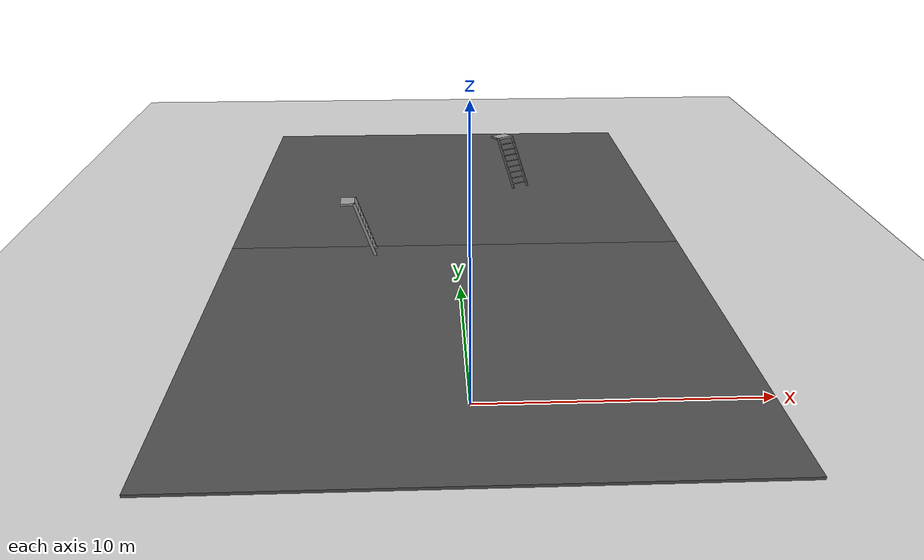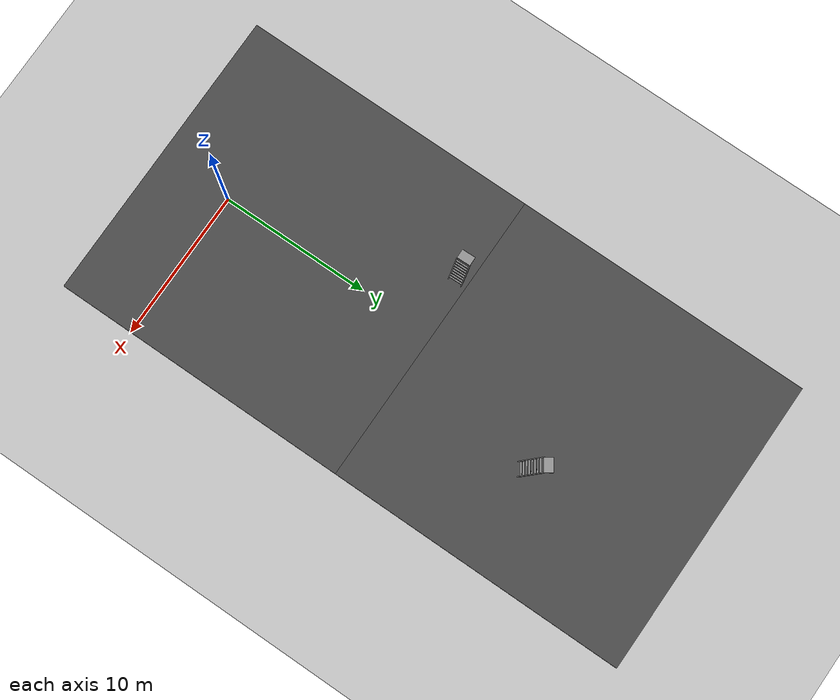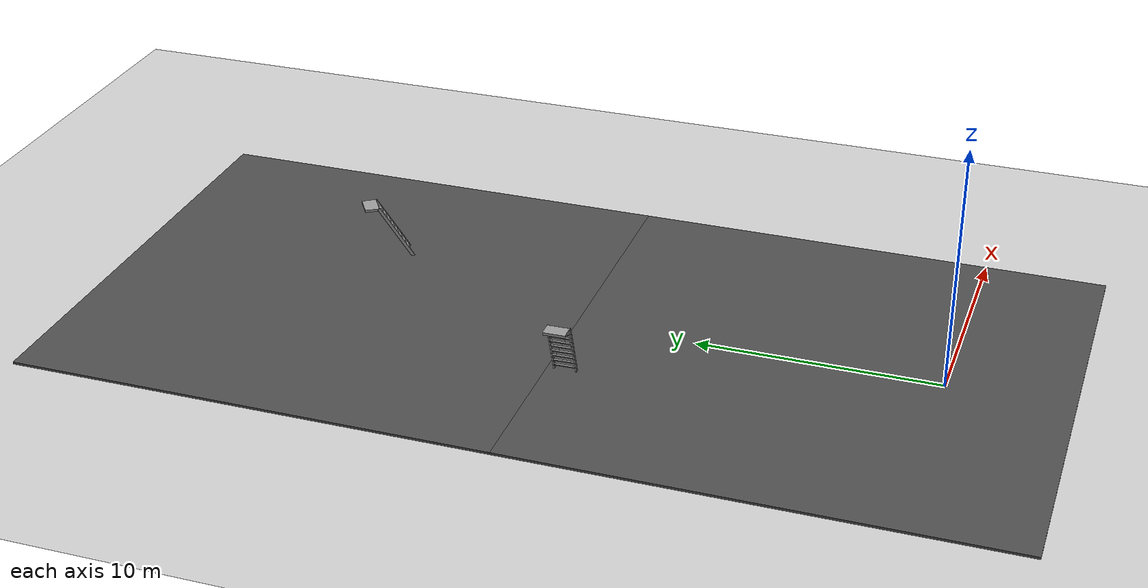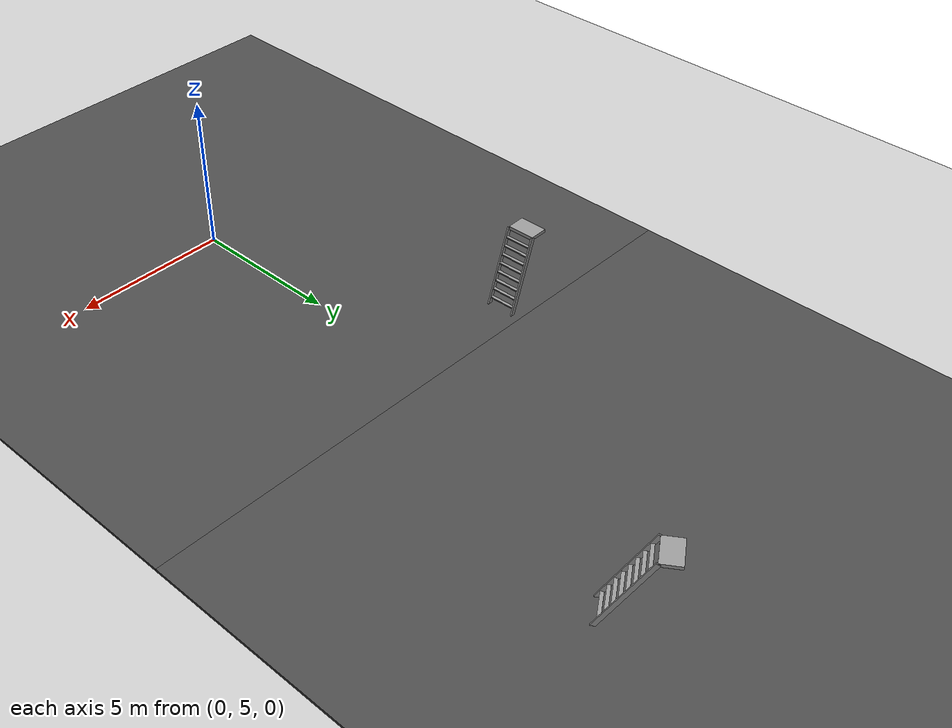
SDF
<sdf version="1.7">
 <world name="default">
  <model name="ground_plane">
   <static>1</static>
   <link name="link">
    <collision name="collision">
     <geometry><plane><normal>0 0 1</normal><size>100 100</size></plane></geometry>
     <surface>
      <contact><collide_bitmask>65535</collide_bitmask></contact>
      <friction><ode><mu>100</mu><mu2>50</mu2></ode></friction>
     </surface>
    </collision>
    <visual name="visual">
     <cast_shadows>0</cast_shadows>
     <geometry><plane><normal>0 0 1</normal><size>100 100</size></plane></geometry>
     <material>
      <script><uri>file://media/materials/scripts/gazebo.material</uri><name>Gazebo/Grey</name></script>
     </material>
    </visual>
   </link>
  </model>
  <gravity>0 0 -9.8</gravity>
  <magnetic_field>6e-06 2.3e-05 -4.2e-05</magnetic_field>
  <atmosphere type="adiabatic"/>
  <physics name="default_physics" default="0" type="ode">
   <max_step_size>0.001</max_step_size>
   <real_time_factor>1</real_time_factor>
   <real_time_update_rate>1000</real_time_update_rate>
  </physics>
  <scene><ambient>0.4 0.4 0.4 1</ambient><background>0.7 0.7 0.7 1</background><shadows>1</shadows></scene>
  <audio><device>default</device></audio>
  <spherical_coordinates>
   <surface_model>EARTH_WGS84</surface_model>
   <latitude_deg>0</latitude_deg>
   <longitude_deg>0</longitude_deg>
   <elevation>0</elevation>
   <heading_deg>0</heading_deg>
  </spherical_coordinates>
  <model name="asphalt_plane">
   <static>1</static>
   <link name="link">
    <collision name="collision"><geometry><box><size>20 20 0.1</size></box></geometry></collision>
    <visual name="visual">
     <cast_shadows>0</cast_shadows>
     <geometry><box><size>20 20 0.1</size></box></geometry>
     <material>
      <script>
       <uri>model://asphalt_plane/materials/scripts</uri>
       <uri>model://asphalt_plane/materials/textures</uri>
       <name>vrc/asphalt</name>
      </script>
     </material>
    </visual>
   </link>
   <pose>0 5 0 0 -0 0</pose>
  </model>
  <model name="asphalt_plane_0">
   <static>1</static>
   <link name="link">
    <collision name="collision"><geometry><box><size>20 20 0.1</size></box></geometry></collision>
    <visual name="visual">
     <cast_shadows>0</cast_shadows>
     <geometry><box><size>20 20 0.1</size></box></geometry>
     <material>
      <script>
       <uri>model://asphalt_plane/materials/scripts</uri>
       <uri>model://asphalt_plane/materials/textures</uri>
       <name>vrc/asphalt</name>
      </script>
     </material>
    </visual>
   </link>
   <pose>0 25 0 0 -0 0</pose>
  </model>
  <model name="ladder_60deg_0rails">
   <static>1</static>
   <link name="step0">
    <pose>0 0.15396 0.266667 0 -0 0</pose>
    <inertial>
     <mass>9.75482</mass>
     <inertia>
      <ixx>0.00957124</ixx>
      <iyy>0.65963</iyy>
      <izz>0.666842</izz>
      <ixy>0</ixy>
      <ixz>0</ixz>
      <iyz>0</iyz>
     </inertia>
    </inertial>
    <collision name="collision"><geometry><box><size>0.9 0.1016 0.0381</size></box></geometry></collision>
    <visual name="visual">
     <geometry><box><size>0.9 0.1016 0.0381</size></box></geometry>
     <material>
      <script><uri>file://media/materials/scripts/gazebo.material</uri><name>Gazebo/Grey</name></script>
     </material>
    </visual>
   </link>
   <link name="step1">
    <pose>0 0.30792 0.533333 0 -0 0</pose>
    <inertial>
     <mass>9.75482</mass>
     <inertia>
      <ixx>0.00957124</ixx>
      <iyy>0.65963</iyy>
      <izz>0.666842</izz>
      <ixy>0</ixy>
      <ixz>0</ixz>
      <iyz>0</iyz>
     </inertia>
    </inertial>
    <collision name="collision"><geometry><box><size>0.9 0.1016 0.0381</size></box></geometry></collision>
    <visual name="visual">
     <geometry><box><size>0.9 0.1016 0.0381</size></box></geometry>
     <material>
      <script><uri>file://media/materials/scripts/gazebo.material</uri><name>Gazebo/Grey</name></script>
     </material>
    </visual>
   </link>
   <link name="step2">
    <pose>0 0.46188 0.8 0 -0 0</pose>
    <inertial>
     <mass>9.75482</mass>
     <inertia>
      <ixx>0.00957124</ixx>
      <iyy>0.65963</iyy>
      <izz>0.666842</izz>
      <ixy>0</ixy>
      <ixz>0</ixz>
      <iyz>0</iyz>
     </inertia>
    </inertial>
    <collision name="collision"><geometry><box><size>0.9 0.1016 0.0381</size></box></geometry></collision>
    <visual name="visual">
     <geometry><box><size>0.9 0.1016 0.0381</size></box></geometry>
     <material>
      <script><uri>file://media/materials/scripts/gazebo.material</uri><name>Gazebo/Grey</name></script>
     </material>
    </visual>
   </link>
   <link name="step3">
    <pose>0 0.61584 1.06667 0 -0 0</pose>
    <inertial>
     <mass>9.75482</mass>
     <inertia>
      <ixx>0.00957124</ixx>
      <iyy>0.65963</iyy>
      <izz>0.666842</izz>
      <ixy>0</ixy>
      <ixz>0</ixz>
      <iyz>0</iyz>
     </inertia>
    </inertial>
    <collision name="collision"><geometry><box><size>0.9 0.1016 0.0381</size></box></geometry></collision>
    <visual name="visual">
     <geometry><box><size>0.9 0.1016 0.0381</size></box></geometry>
     <material>
      <script><uri>file://media/materials/scripts/gazebo.material</uri><name>Gazebo/Grey</name></script>
     </material>
    </visual>
   </link>
   <link name="step4">
    <pose>0 0.7698 1.33333 0 -0 0</pose>
    <inertial>
     <mass>9.75482</mass>
     <inertia>
      <ixx>0.00957124</ixx>
      <iyy>0.65963</iyy>
      <izz>0.666842</izz>
      <ixy>0</ixy>
      <ixz>0</ixz>
      <iyz>0</iyz>
     </inertia>
    </inertial>
    <collision name="collision"><geometry><box><size>0.9 0.1016 0.0381</size></box></geometry></collision>
    <visual name="visual">
     <geometry><box><size>0.9 0.1016 0.0381</size></box></geometry>
     <material>
      <script><uri>file://media/materials/scripts/gazebo.material</uri><name>Gazebo/Grey</name></script>
     </material>
    </visual>
   </link>
   <link name="step5">
    <pose>0 0.92376 1.6 0 -0 0</pose>
    <inertial>
     <mass>9.75482</mass>
     <inertia>
      <ixx>0.00957124</ixx>
      <iyy>0.65963</iyy>
      <izz>0.666842</izz>
      <ixy>0</ixy>
      <ixz>0</ixz>
      <iyz>0</iyz>
     </inertia>
    </inertial>
    <collision name="collision"><geometry><box><size>0.9 0.1016 0.0381</size></box></geometry></collision>
    <visual name="visual">
     <geometry><box><size>0.9 0.1016 0.0381</size></box></geometry>
     <material>
      <script><uri>file://media/materials/scripts/gazebo.material</uri><name>Gazebo/Grey</name></script>
     </material>
    </visual>
   </link>
   <link name="step6">
    <pose>0 1.07772 1.86667 0 -0 0</pose>
    <inertial>
     <mass>9.75482</mass>
     <inertia>
      <ixx>0.00957124</ixx>
      <iyy>0.65963</iyy>
      <izz>0.666842</izz>
      <ixy>0</ixy>
      <ixz>0</ixz>
      <iyz>0</iyz>
     </inertia>
    </inertial>
    <collision name="collision"><geometry><box><size>0.9 0.1016 0.0381</size></box></geometry></collision>
    <visual name="visual">
     <geometry><box><size>0.9 0.1016 0.0381</size></box></geometry>
     <material>
      <script><uri>file://media/materials/scripts/gazebo.material</uri><name>Gazebo/Grey</name></script>
     </material>
    </visual>
   </link>
   <link name="step7">
    <pose>0 1.23168 2.13333 0 -0 0</pose>
    <inertial>
     <mass>9.75482</mass>
     <inertia>
      <ixx>0.00957124</ixx>
      <iyy>0.65963</iyy>
      <izz>0.666842</izz>
      <ixy>0</ixy>
      <ixz>0</ixz>
      <iyz>0</iyz>
     </inertia>
    </inertial>
    <collision name="collision"><geometry><box><size>0.9 0.1016 0.0381</size></box></geometry></collision>
    <visual name="visual">
     <geometry><box><size>0.9 0.1016 0.0381</size></box></geometry>
     <material>
      <script><uri>file://media/materials/scripts/gazebo.material</uri><name>Gazebo/Grey</name></script>
     </material>
    </visual>
   </link>
   <link name="landing">
    <pose>0 1.68564 2.4 0 -0 0</pose>
    <inertial>
     <mass>57.6072</mass>
     <inertia><ixx>1.73518</ixx><iyy>3.89545</iyy><izz>5.6167</izz><ixy>0</ixy><ixz>0</ixz><iyz>0</iyz></inertia>
    </inertial>
    <collision name="collision"><geometry><box><size>0.9 0.6 0.1016</size></box></geometry></collision>
    <visual name="visual">
     <geometry><box><size>0.9 0.6 0.1016</size></box></geometry>
     <material>
      <script><uri>file://media/materials/scripts/gazebo.material</uri><name>Gazebo/Grey</name></script>
     </material>
    </visual>
   </link>
   <link name="left_side_wall">
    <pose>-0.45 0.69282 1.2 1.0472 -0 0</pose>
    <collision name="collision"><geometry><box><size>0.0508 2.85128 0.13</size></box></geometry></collision>
    <visual name="visual">
     <geometry><box><size>0.0508 2.85128 0.13</size></box></geometry>
     <material>
      <script><uri>file://media/materials/scripts/gazebo.material</uri><name>Gazebo/Grey</name></script>
     </material>
    </visual>
   </link>
   <link name="right_side_wall">
    <pose>0.45 0.69282 1.2 1.0472 -0 0</pose>
    <collision name="collision"><geometry><box><size>0.0508 2.85128 0.13</size></box></geometry></collision>
    <visual name="visual">
     <geometry><box><size>0.0508 2.85128 0.13</size></box></geometry>
     <material>
      <script><uri>file://media/materials/scripts/gazebo.material</uri><name>Gazebo/Grey</name></script>
     </material>
    </visual>
   </link>
   <pose>3.62253 23.736 0 0 -0 0.578083</pose>
  </model>
  <model name="ladder_70deg_0rails">
   <static>1</static>
   <link name="step0">
    <pose>0 0.097059 0.266667 0 -0 0</pose>
    <inertial>
     <mass>9.75482</mass>
     <inertia>
      <ixx>0.00957124</ixx>
      <iyy>0.65963</iyy>
      <izz>0.666842</izz>
      <ixy>0</ixy>
      <ixz>0</ixz>
      <iyz>0</iyz>
     </inertia>
    </inertial>
    <collision name="collision"><geometry><box><size>0.9 0.1016 0.0381</size></box></geometry></collision>
    <visual name="visual">
     <geometry><box><size>0.9 0.1016 0.0381</size></box></geometry>
     <material>
      <script><uri>file://media/materials/scripts/gazebo.material</uri><name>Gazebo/Grey</name></script>
     </material>
    </visual>
   </link>
   <link name="step1">
    <pose>0 0.194117 0.533333 0 -0 0</pose>
    <inertial>
     <mass>9.75482</mass>
     <inertia>
      <ixx>0.00957124</ixx>
      <iyy>0.65963</iyy>
      <izz>0.666842</izz>
      <ixy>0</ixy>
      <ixz>0</ixz>
      <iyz>0</iyz>
     </inertia>
    </inertial>
    <collision name="collision"><geometry><box><size>0.9 0.1016 0.0381</size></box></geometry></collision>
    <visual name="visual">
     <geometry><box><size>0.9 0.1016 0.0381</size></box></geometry>
     <material>
      <script><uri>file://media/materials/scripts/gazebo.material</uri><name>Gazebo/Grey</name></script>
     </material>
    </visual>
   </link>
   <link name="step2">
    <pose>0 0.291176 0.8 0 -0 0</pose>
    <inertial>
     <mass>9.75482</mass>
     <inertia>
      <ixx>0.00957124</ixx>
      <iyy>0.65963</iyy>
      <izz>0.666842</izz>
      <ixy>0</ixy>
      <ixz>0</ixz>
      <iyz>0</iyz>
     </inertia>
    </inertial>
    <collision name="collision"><geometry><box><size>0.9 0.1016 0.0381</size></box></geometry></collision>
    <visual name="visual">
     <geometry><box><size>0.9 0.1016 0.0381</size></box></geometry>
     <material>
      <script><uri>file://media/materials/scripts/gazebo.material</uri><name>Gazebo/Grey</name></script>
     </material>
    </visual>
   </link>
   <link name="step3">
    <pose>0 0.388235 1.06667 0 -0 0</pose>
    <inertial>
     <mass>9.75482</mass>
     <inertia>
      <ixx>0.00957124</ixx>
      <iyy>0.65963</iyy>
      <izz>0.666842</izz>
      <ixy>0</ixy>
      <ixz>0</ixz>
      <iyz>0</iyz>
     </inertia>
    </inertial>
    <collision name="collision"><geometry><box><size>0.9 0.1016 0.0381</size></box></geometry></collision>
    <visual name="visual">
     <geometry><box><size>0.9 0.1016 0.0381</size></box></geometry>
     <material>
      <script><uri>file://media/materials/scripts/gazebo.material</uri><name>Gazebo/Grey</name></script>
     </material>
    </visual>
   </link>
   <link name="step4">
    <pose>0 0.485294 1.33333 0 -0 0</pose>
    <inertial>
     <mass>9.75482</mass>
     <inertia>
      <ixx>0.00957124</ixx>
      <iyy>0.65963</iyy>
      <izz>0.666842</izz>
      <ixy>0</ixy>
      <ixz>0</ixz>
      <iyz>0</iyz>
     </inertia>
    </inertial>
    <collision name="collision"><geometry><box><size>0.9 0.1016 0.0381</size></box></geometry></collision>
    <visual name="visual">
     <geometry><box><size>0.9 0.1016 0.0381</size></box></geometry>
     <material>
      <script><uri>file://media/materials/scripts/gazebo.material</uri><name>Gazebo/Grey</name></script>
     </material>
    </visual>
   </link>
   <link name="step5">
    <pose>0 0.582352 1.6 0 -0 0</pose>
    <inertial>
     <mass>9.75482</mass>
     <inertia>
      <ixx>0.00957124</ixx>
      <iyy>0.65963</iyy>
      <izz>0.666842</izz>
      <ixy>0</ixy>
      <ixz>0</ixz>
      <iyz>0</iyz>
     </inertia>
    </inertial>
    <collision name="collision"><geometry><box><size>0.9 0.1016 0.0381</size></box></geometry></collision>
    <visual name="visual">
     <geometry><box><size>0.9 0.1016 0.0381</size></box></geometry>
     <material>
      <script><uri>file://media/materials/scripts/gazebo.material</uri><name>Gazebo/Grey</name></script>
     </material>
    </visual>
   </link>
   <link name="step6">
    <pose>0 0.679411 1.86667 0 -0 0</pose>
    <inertial>
     <mass>9.75482</mass>
     <inertia>
      <ixx>0.00957124</ixx>
      <iyy>0.65963</iyy>
      <izz>0.666842</izz>
      <ixy>0</ixy>
      <ixz>0</ixz>
      <iyz>0</iyz>
     </inertia>
    </inertial>
    <collision name="collision"><geometry><box><size>0.9 0.1016 0.0381</size></box></geometry></collision>
    <visual name="visual">
     <geometry><box><size>0.9 0.1016 0.0381</size></box></geometry>
     <material>
      <script><uri>file://media/materials/scripts/gazebo.material</uri><name>Gazebo/Grey</name></script>
     </material>
    </visual>
   </link>
   <link name="step7">
    <pose>0 0.77647 2.13333 0 -0 0</pose>
    <inertial>
     <mass>9.75482</mass>
     <inertia>
      <ixx>0.00957124</ixx>
      <iyy>0.65963</iyy>
      <izz>0.666842</izz>
      <ixy>0</ixy>
      <ixz>0</ixz>
      <iyz>0</iyz>
     </inertia>
    </inertial>
    <collision name="collision"><geometry><box><size>0.9 0.1016 0.0381</size></box></geometry></collision>
    <visual name="visual">
     <geometry><box><size>0.9 0.1016 0.0381</size></box></geometry>
     <material>
      <script><uri>file://media/materials/scripts/gazebo.material</uri><name>Gazebo/Grey</name></script>
     </material>
    </visual>
   </link>
   <link name="landing">
    <pose>0 1.17353 2.4 0 -0 0</pose>
    <inertial>
     <mass>57.6072</mass>
     <inertia><ixx>1.73518</ixx><iyy>3.89545</iyy><izz>5.6167</izz><ixy>0</ixy><ixz>0</ixz><iyz>0</iyz></inertia>
    </inertial>
    <collision name="collision"><geometry><box><size>0.9 0.6 0.1016</size></box></geometry></collision>
    <visual name="visual">
     <geometry><box><size>0.9 0.6 0.1016</size></box></geometry>
     <material>
      <script><uri>file://media/materials/scripts/gazebo.material</uri><name>Gazebo/Grey</name></script>
     </material>
    </visual>
   </link>
   <link name="left_side_wall">
    <pose>-0.45 0.436764 1.2 1.22173 -0 0</pose>
    <collision name="collision"><geometry><box><size>0.0508 2.63403 0.13</size></box></geometry></collision>
    <visual name="visual">
     <geometry><box><size>0.0508 2.63403 0.13</size></box></geometry>
     <material>
      <script><uri>file://media/materials/scripts/gazebo.material</uri><name>Gazebo/Grey</name></script>
     </material>
    </visual>
   </link>
   <link name="right_side_wall">
    <pose>0.45 0.436764 1.2 1.22173 -0 0</pose>
    <collision name="collision"><geometry><box><size>0.0508 2.63403 0.13</size></box></geometry></collision>
    <visual name="visual">
     <geometry><box><size>0.0508 2.63403 0.13</size></box></geometry>
     <material>
      <script><uri>file://media/materials/scripts/gazebo.material</uri><name>Gazebo/Grey</name></script>
     </material>
    </visual>
   </link>
   <pose>-3.57304 14.2599 0 0 -0 1.59469</pose>
  </model>
  <light name="user_point_light_0" type="point">
   <pose>-1.61645 11.9622 1 0 -0 0</pose>
   <diffuse>0.5 0.5 0.5 1</diffuse>
   <specular>0.1 0.1 0.1 1</specular>
   <attenuation>
    <range>20</range>
    <constant>0.5</constant>
    <linear>0.01</linear>
    <quadratic>0.001</quadratic>
   </attenuation>
   <cast_shadows>0</cast_shadows>
   <direction>0 0 -1</direction>
   <spot><inner_angle>0</inner_angle><outer_angle>0</outer_angle><falloff>0</falloff></spot>
  </light>
  <light name="user_point_light_1" type="point">
   <pose>-1.20635 19.3799 1 0 -0 0</pose>
   <diffuse>0.5 0.5 0.5 1</diffuse>
   <specular>0.1 0.1 0.1 1</specular>
   <attenuation>
    <range>20</range>
    <constant>0.5</constant>
    <linear>0.01</linear>
    <quadratic>0.001</quadratic>
   </attenuation>
   <cast_shadows>0</cast_shadows>
   <direction>0 0 -1</direction>
   <spot><inner_angle>0</inner_angle><outer_angle>0</outer_angle><falloff>0</falloff></spot>
  </light>
  <light name="user_point_light_2" type="point">
   <pose>-3.66888 348.193 1 0 -0 0</pose>
   <diffuse>0.5 0.5 0.5 1</diffuse>
   <specular>0.1 0.1 0.1 1</specular>
   <attenuation>
    <range>20</range>
    <constant>0.5</constant>
    <linear>0.01</linear>
    <quadratic>0.001</quadratic>
   </attenuation>
   <cast_shadows>0</cast_shadows>
   <direction>0 0 -1</direction>
   <spot><inner_angle>0</inner_angle><outer_angle>0</outer_angle><falloff>0</falloff></spot>
  </light>
 </world>
</sdf>
